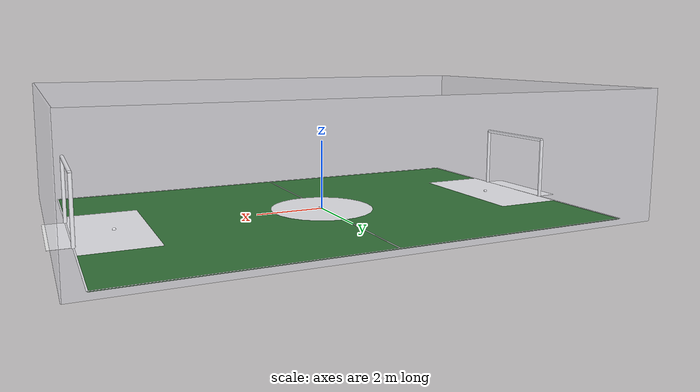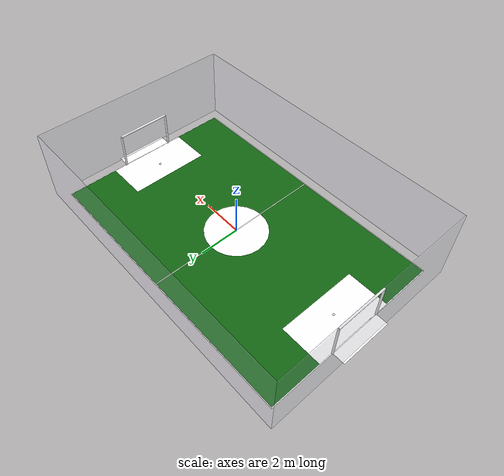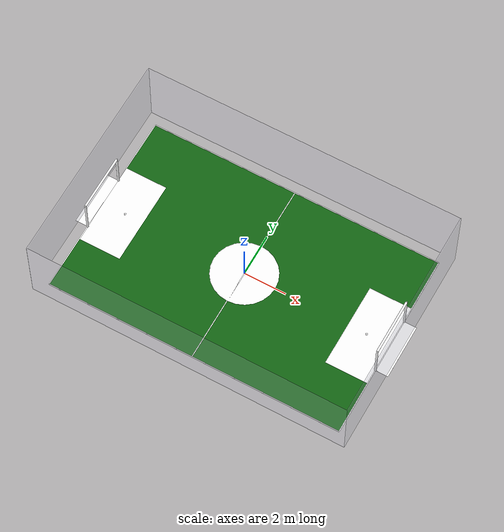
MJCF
<?xml version='1.0' encoding='utf-8'?>
<mujoco model="robocup_field_adult">
    <compiler angle="degree" coordinate="local" />
    <option gravity="0 0 -9.81" />
    <asset>
        <texture name="grass" type="2d" builtin="checker" width="512" height="512"
            rgb1="0.1 0.5 0.1" rgb2="0.05 0.3 0.05" />
        <material name="field_mat" texture="grass" texrepeat="8 8" reflectance="0.05" />
        <material name="line_mat" rgba="1 1 1 1" />
        <material name="goal_mat" rgba="1 1 1 1" />
        <material name="fence_mat" rgba="0.8 0.8 0.9 0.15" />
    </asset>
    <worldbody>
        <geom name="field" type="plane" size="7.0 4.5 0.1" material="field_mat" />
        <geom type="box" pos="0 4.5 0.001" size="7.0 0.02 0.001" material="line_mat" contype="0"
            conaffinity="0" />
        <geom type="box" pos="0 -4.5 0.001" size="7.0 0.02 0.001" material="line_mat" contype="0"
            conaffinity="0" />
        <geom type="box" pos="7.0 0 0.001" size="0.02 4.5 0.001" material="line_mat" contype="0"
            conaffinity="0" />
        <geom type="box" pos="-7.0 0 0.001" size="0.02 4.5 0.001" material="line_mat" contype="0"
            conaffinity="0" />
        <geom type="box" pos="0 0 0.001" size="0.02 4.5 0.001" material="line_mat" contype="0"
            conaffinity="0" />
        <geom type="cylinder" pos="0 0 0.001" size="1.5 0.001" material="line_mat" contype="0"
            conaffinity="0" />
        <geom type="sphere" pos="5.9 0 0.01" size="0.05" material="line_mat" contype="0"
            conaffinity="0" />
        <geom type="sphere" pos="-5.9 0 0.01" size="0.05" material="line_mat" contype="0"
            conaffinity="0" />
        <geom type="box" pos="6.0 0 0.001" size="1.0 2.0 0.001" material="line_mat" contype="0"
            conaffinity="0" />
        <geom type="box" pos="-6.0 0 0.001" size="1.0 2.0 0.001" material="line_mat" contype="0"
            conaffinity="0" />
        <body name="goal_right" pos="7.0 0 0">
            <geom type="cylinder" fromto="0 1.3 0 0 1.3 1.8" size="0.05" material="goal_mat" />
            <geom type="cylinder" fromto="0 -1.3 0 0 -1.3 1.8" size="0.05" material="goal_mat" />
            <geom type="cylinder" fromto="0 1.3 1.8 0 -1.3 1.8" size="0.05" material="goal_mat" />
            <geom type="box" pos="0.3 0 0.001" size="0.3 1.3 0.001" material="line_mat" contype="0"
                conaffinity="0" />
        </body>
        <body name="fence" pos="0 0 0">
            <geom type="box" pos="0 5.0 1.8" size="7.5 0.02 1.8" material="fence_mat" contype="0" conaffinity="0" />
            <geom type="box" pos="0 -5.0 1.8" size="7.5 0.02 1.8" material="fence_mat" contype="0" conaffinity="0" />
            <geom type="box" pos="7.5 0 1.8" size="0.02 5.0 1.8" material="fence_mat" contype="0" conaffinity="0" />
            <geom type="box" pos="-7.5 0 1.8" size="0.02 5.0 1.8" material="fence_mat" contype="0" conaffinity="0" />
        </body>
        <body name="goal_left" pos="-7.0 0 0">
            <geom type="cylinder" fromto="0 1.3 0 0 1.3 1.8" size="0.05" material="goal_mat" />
            <geom type="cylinder" fromto="0 -1.3 0 0 -1.3 1.8" size="0.05" material="goal_mat" />
            <geom type="cylinder" fromto="0 1.3 1.8 0 -1.3 1.8" size="0.05" material="goal_mat" />
            <geom type="box" pos="-0.3 0 0.001" size="0.3 1.3 0.001" material="line_mat" contype="0"
                conaffinity="0" />
        </body>
    </worldbody>
</mujoco>
